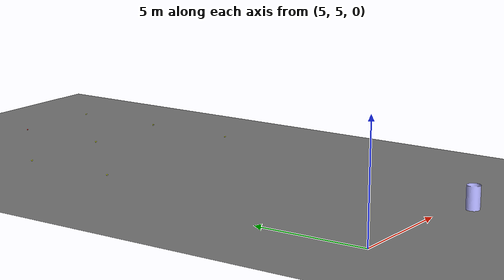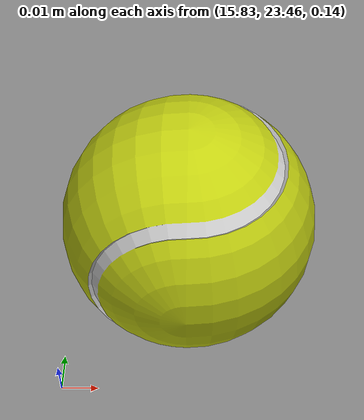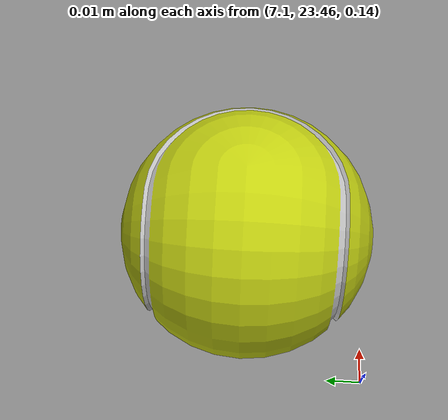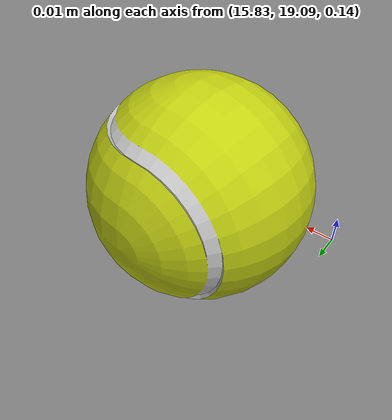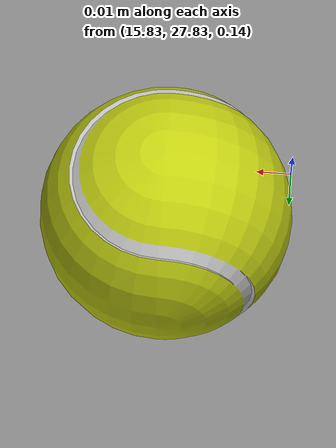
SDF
<sdf version="1.7">
 <world name="default">
  <physics type="ode">
   <max_step_size>0.004</max_step_size>
   <real_time_factor>1.0</real_time_factor>
   <real_time_update_rate>250</real_time_update_rate>
  </physics>
  <plugin filename="gz-sim-physics-system" name="gz::sim::systems::Physics"/>
  <plugin filename="gz-sim-scene-broadcaster-system" name="gz::sim::systems::SceneBroadcaster"/>
  <plugin filename="gz-sim-user-commands-system" name="gz::sim::systems::UserCommands"/>
  <plugin filename="gz-sim-contact-system" name="gz::sim::systems::Contact"/>
  <plugin filename="gz-sim-imu-system" name="gz::sim::systems::Imu"/>
  <plugin filename="gz-sim-air-pressure-system" name="gz::sim::systems::AirPressure"/>
  <plugin filename="gz-sim-apply-link-wrench-system" name="gz::sim::systems::ApplyLinkWrench"/>
  <plugin filename="gz-sim-navsat-system" name="gz::sim::systems::NavSat"/>
  <plugin filename="gz-sim-sensors-system" name="gz::sim::systems::Sensors">
   <render_engine>ogre2</render_engine>
  </plugin>
  <gravity>0 0 -9.8066</gravity>
  <magnetic_field>6e-06 2.3e-05 -4.2e-05</magnetic_field>
  <atmosphere type="adiabatic"/>
  <scene>
   <grid>false</grid>
   <ambient>0.4 0.4 0.4</ambient>
   <background>0.7 0.7 0.7</background>
   <shadows>true</shadows>
  </scene>
  <light type="directional" name="sun">
   <pose>0 0 20 -1.3 0 0.5</pose>
   <diffuse>1 1 1 1</diffuse>
   <specular>0.1 0.1 0.1 1</specular>
   <intensity>1</intensity>
   <visualize>true</visualize>
  </light>
  <include><uri>model://barrel</uri><pose>12.66 3.43 0.745 0 -0 0</pose></include>
  <include><uri>model://mine</uri></include>
  <include>
   <uri>model://ball_yellow</uri>
   <pose>7.132 23.495 0.17 0 0 0</pose>
   <name>yellow_ball_0</name>
  </include>
  <include>
   <uri>model://ball_yellow</uri>
   <pose>11.51 23.495 0.17 0 0 0</pose>
   <name>yellow_ball_1</name>
  </include>
  <include>
   <uri>model://ball_yellow</uri>
   <pose>15.864 19.124 0.17 0 0 0</pose>
   <name>yellow_ball_2</name>
  </include>
  <include>
   <uri>model://ball_yellow</uri>
   <pose>15.864 27.861 0.17 0 0 0</pose>
   <name>yellow_ball_3</name>
  </include>
  <include>
   <uri>model://ball_yellow</uri>
   <pose>15.864 23.495 0.17 0 0 0</pose>
   <name>yellow_ball_4</name>
  </include>
  <include>
   <uri>model://ball_yellow</uri>
   <pose>7.132 19.124 0.17 0 0 0</pose>
   <name>yellow_ball_5</name>
  </include>
  <include><uri>model://ball_red</uri><pose>11.51 27.861 0.17 0 0 0</pose><name>red_ball_7</name></include>
  <spherical_coordinates>
   <surface_model>EARTH_WGS84</surface_model>
   <world_frame_orientation>ENU</world_frame_orientation>
   <latitude_deg>50.293615072405</latitude_deg>
   <longitude_deg>18.674141300161885</longitude_deg>
   <altitude>0</altitude>
  </spherical_coordinates>
 </world>
</sdf>

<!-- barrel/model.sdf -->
<sdf version="1.6">
    <model name='barrel'>
      <link name='link_3'>
        <inertial>
          <mass>1</mass>
          <inertia>
            <ixx>0.166667</ixx>
            <ixy>0</ixy>
            <ixz>0</ixz>
            <iyy>0.166667</iyy>
            <iyz>0</iyz>
            <izz>0.166667</izz>
          </inertia>
          <pose>0 0 0 0 -0 0</pose>
        </inertial>
        <pose>0 0 0 0 -0 0</pose>
        <gravity>1</gravity>
        <self_collide>0</self_collide>
        <kinematic>0</kinematic>
        <enable_wind>0</enable_wind>
        <visual name='visual'>
          <pose>0 0 0 0 -0 0</pose>
          <geometry>
            <mesh>
            <uri>model://barrel/barrel.stl</uri>
            <scale>1 1 1</scale>
            </mesh>
          </geometry>
          <material>
            <lighting>1</lighting>
            <script>
              <uri>file://media/materials/scripts/gazebo.material</uri>
              <name>Gazebo/Grey</name>
            </script>
            <shader type='pixel'>
              <normal_map>__default__</normal_map>
            </shader>
            <ambient>0 0 1 0</ambient>
            <diffuse>0.7 0.7 1 1</diffuse>
            <specular>0.01 0.01 1 1</specular>
            <emissive>0 0 1 1</emissive>
          </material>
          <transparency>0</transparency>
          <cast_shadows>1</cast_shadows>
        </visual>
        <collision name='collision'>
          <laser_retro>0</laser_retro>
          <max_contacts>10</max_contacts>
          <pose>0 0 0 0 -0 0</pose>
          <geometry>
            <mesh>
              <uri>model://barrel/barrel.stl</uri>
              <scale>1 1 1</scale>
            </mesh>
          </geometry>
          <surface>
            <friction>
              <ode>
                <mu>1</mu>
                <mu2>1</mu2>
                <fdir1>0 0 0</fdir1>
                <slip1>0</slip1>
                <slip2>0</slip2>
              </ode>
              <torsional>
                <coefficient>1</coefficient>
                <patch_radius>0</patch_radius>
                <surface_radius>0</surface_radius>
                <use_patch_radius>1</use_patch_radius>
                <ode>
                  <slip>0</slip>
                </ode>
              </torsional>
            </friction>
            <bounce>
              <restitution_coefficient>0</restitution_coefficient>
              <threshold>1e+06</threshold>
            </bounce>
            <contact>
              <collide_without_contact>0</collide_without_contact>
              <collide_without_contact_bitmask>1</collide_without_contact_bitmask>
              <collide_bitmask>1</collide_bitmask>
              <ode>
                <soft_cfm>0</soft_cfm>
                <soft_erp>0.2</soft_erp>
                <kp>1e+13</kp>
                <kd>1</kd>
                <max_vel>0.01</max_vel>
                <min_depth>0</min_depth>
              </ode>
              <bullet>
                <split_impulse>1</split_impulse>
                <split_impulse_penetration_threshold>-0.01</split_impulse_penetration_threshold>
                <soft_cfm>0</soft_cfm>
                <soft_erp>0.2</soft_erp>
                <kp>1e+13</kp>
                <kd>1</kd>
              </bullet>
            </contact>
          </surface>
        </collision>
      </link>
      <static>1</static>
      <allow_auto_disable>1</allow_auto_disable>
      <pose>1.17484 -0.55737 0.766244 0 -0 0</pose>
    </model>
</sdf>

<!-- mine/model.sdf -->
<sdf version="1.6">
  <model name='mine'>
    <pose>0 0 0 0 0 0</pose>
    <static>1</static>
    <link name='link'>
      <collision name='collision'>
        <geometry>
          <mesh>
            <uri>model://mine/meshes/mine.dae</uri>
          </mesh>
        </geometry>
        <max_contacts>10</max_contacts>
        <surface>
          <contact>
            <ode/>
          </contact>
          <bounce/>
          <friction>
            <torsional>
              <ode/>
            </torsional>
            <ode/>
          </friction>
        </surface>
      </collision>
      <visual name='visual'>
        <geometry>
          <mesh>
            <uri>model://mine/meshes/mine.dae</uri>
          </mesh>
        </geometry>
      </visual>
      <self_collide>0</self_collide>
      <enable_wind>0</enable_wind>
      <kinematic>0</kinematic>
    </link>
  </model>
</sdf>

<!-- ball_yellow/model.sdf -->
<sdf version="1.6">
  <model name="ball_yellow">
    <static>true</static>
    <link name="link">
      <collision name="collision">
        <geometry>
          <mesh>
            <uri>model://ball_yellow/meshes/ball_yellow.dae</uri>
          </mesh>
        </geometry>
      </collision>
      <visual name="visual">
        <geometry>
          <mesh>
            <uri>model://ball_yellow/meshes/ball_yellow.dae</uri>
          </mesh>
        </geometry>
      </visual>
    </link>
  </model>
</sdf>

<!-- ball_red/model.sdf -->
<sdf version="1.6">
  <model name="ball_red">
    <static>true</static>
    <link name="link">
      <collision name="collision">
        <geometry>
          <mesh>
            <uri>model://ball_red/meshes/ball_red.dae</uri>
          </mesh>
        </geometry>
      </collision>
      <visual name="visual">
        <geometry>
          <mesh>
            <uri>model://ball_red/meshes/ball_red.dae</uri>
          </mesh>
        </geometry>
      </visual>
    </link>
  </model>
</sdf>
